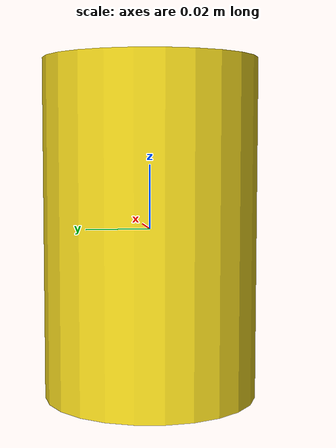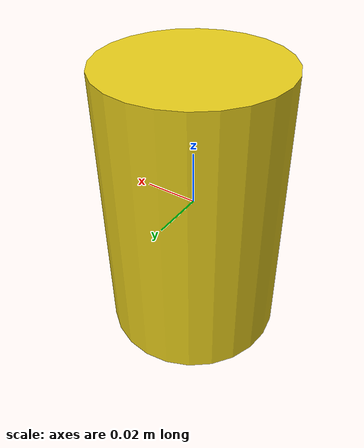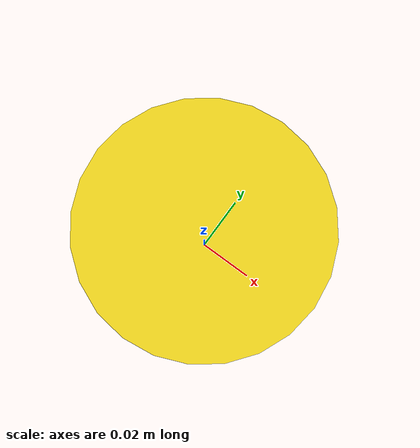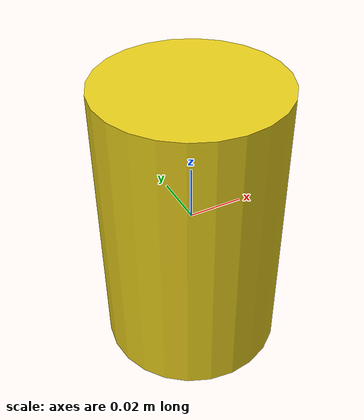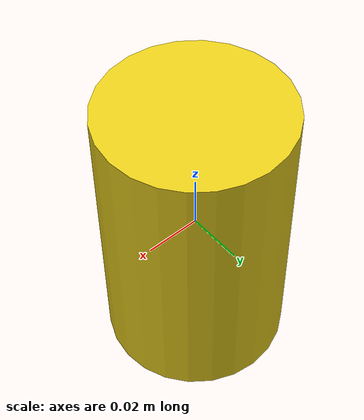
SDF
<?xml version="1.0" ?>
<sdf version="1.5">
  <model name="beer_can">
    <link name="link">
      <inertial>
        <mass>0.350</mass>
        <!-- cylinder: r=0.033m, h=0.105m -->
        <inertia>
          <ixx>0.000515</ixx><ixy>0</ixy><ixz>0</ixz>
          <iyy>0.000515</iyy><iyz>0</iyz><izz>0.000191</izz>
        </inertia>
      </inertial>
      <collision name="collision">
        <geometry><cylinder><radius>0.033</radius><length>0.105</length></cylinder></geometry>
              <surface>
          <friction>
            <ode>
              <mu>0.5</mu>
              <mu2>0.5</mu2>
            </ode>
            <torsional>
              <coefficient>0.5</coefficient>
              <surface_radius>0.01</surface_radius>
            </torsional>
          </friction>
          <contact>
            <ode>
              <kp>1e6</kp>
              <kd>50</kd>
              <min_depth>0.001</min_depth>
              <max_vel>0.01</max_vel>
            </ode>
          </contact>
        </surface>
      </collision>
      <visual name="visual">
        <geometry><cylinder><radius>0.033</radius><length>0.105</length></cylinder></geometry>
        <material>
          <ambient>0.9 0.8 0.1 1</ambient><diffuse>0.9 0.8 0.1 1</diffuse>
        </material>
      </visual>
    </link>
  </model>
</sdf>
